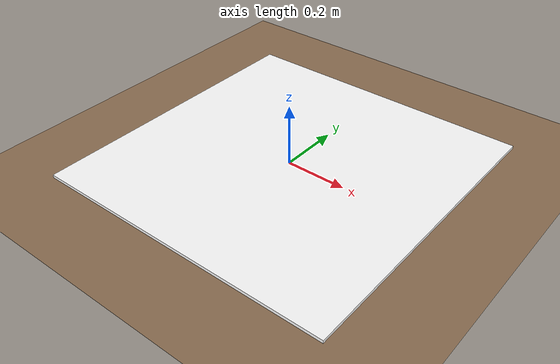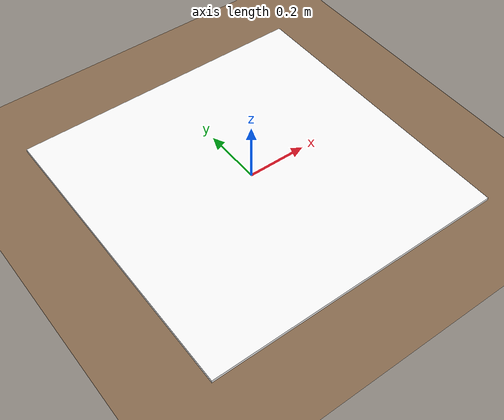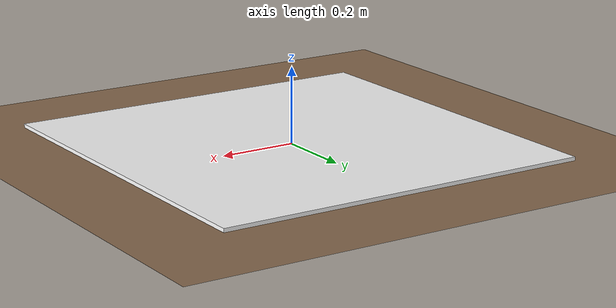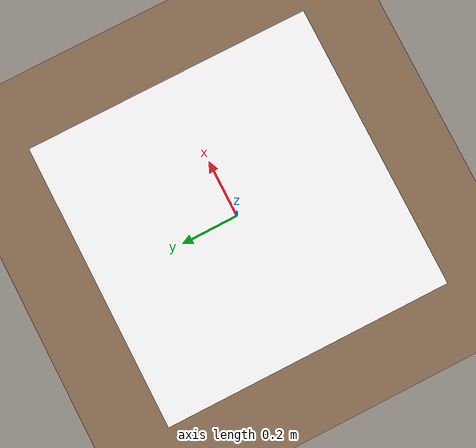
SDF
<?xml version="1.0" encoding="UTF-8"?>
<sdf version="1.9">
  <world name="f450_landing">
    <physics type="ode">
      <max_step_size>0.004</max_step_size>
      <real_time_factor>1.0</real_time_factor>
      <real_time_update_rate>250</real_time_update_rate>
    </physics>
    <gravity>0 0 -9.8</gravity>
    <magnetic_field>6e-06 2.3e-05 -4.2e-05</magnetic_field>
    <atmosphere type="adiabatic"/>
    <scene>
      <grid>false</grid>
      <ambient>0.4 0.4 0.4 1</ambient>
      <background>0.7 0.7 0.7 1</background>
      <shadows>true</shadows>
    </scene>

    <light name="sunUTC" type="directional">
      <pose>0 0 500 0 -0 0</pose>
      <cast_shadows>true</cast_shadows>
      <intensity>1</intensity>
      <direction>0.001 0.625 -0.78</direction>
      <diffuse>0.904 0.904 0.904 1</diffuse>
      <specular>0.271 0.271 0.271 1</specular>
      <attenuation>
        <range>2000</range>
        <linear>0</linear>
        <constant>1</constant>
        <quadratic>0</quadratic>
      </attenuation>
      <spot>
        <inner_angle>0</inner_angle>
        <outer_angle>0</outer_angle>
        <falloff>0</falloff>
      </spot>
    </light>
    <spherical_coordinates>
      <surface_model>EARTH_WGS84</surface_model>
      <world_frame_orientation>ENU</world_frame_orientation>
      <latitude_deg>47.397971057728974</latitude_deg>
      <longitude_deg> 8.546163739800146</longitude_deg>
      <elevation>0</elevation>
    </spherical_coordinates>

    <include>
      <uri>model://dirt_ground</uri>
      <name>dirt_ground</name>
      <pose>0 0 0 0 0 0</pose>
    </include>

    <include>
      <uri>model://landing_pad_charuco</uri>
      <name>landing_pad</name>
      <pose>0 0 0.006 0 0 0</pose>
    </include>
  </world>
</sdf>

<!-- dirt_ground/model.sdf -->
<sdf version="1.9">
  <model name="dirt_ground">
    <static>true</static>
    <link name="link">
      <collision name="collision">
        <geometry>
          <plane><normal>0 0 1</normal><size>60 60</size></plane>
        </geometry>
        <surface>
          <friction><ode><mu>1.0</mu><mu2>1.0</mu2></ode></friction>
        </surface>
      </collision>
      <visual name="visual">
        <geometry>
          <plane><normal>0 0 1</normal><size>60 60</size></plane>
        </geometry>
        <material>
          <ambient>0.50 0.40 0.30 1</ambient>
          <diffuse>0.55 0.43 0.32 1</diffuse>
          <specular>0.02 0.02 0.02 1</specular>
        </material>
      </visual>
    </link>
  </model>
</sdf>

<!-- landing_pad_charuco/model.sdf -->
<sdf version="1.9">
  <model name="landing_pad_charuco">
    <static>true</static>
    <link name="link">
      <visual name="visual">
        <geometry>
          <box><size>1.0 1.0 0.01</size></box>
        </geometry>
        <material>
          <ambient>1 1 1 1</ambient>
          <diffuse>1 1 1 1</diffuse>
          <specular>0.05 0.05 0.05 1</specular>
          <pbr>
            <metal>
              <albedo_map>model://landing_pad_charuco/materials/textures/landing_pad.png</albedo_map>
            </metal>
          </pbr>
        </material>
      </visual>
      <collision name="collision">
        <geometry>
          <box><size>1.0 1.0 0.01</size></box>
        </geometry>
      </collision>
    </link>
  </model>
</sdf>
